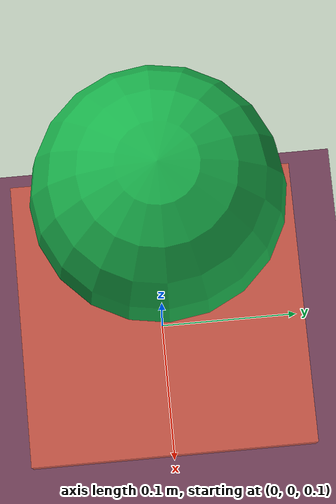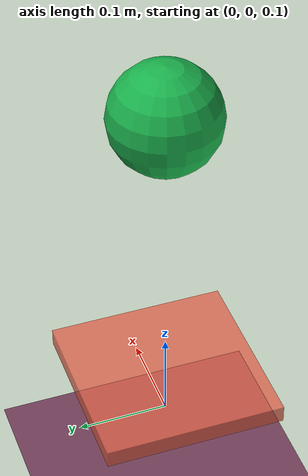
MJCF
<mujoco model="dribble_up">
  <compiler angle="radian" balanceinertia="true"/>

  <option timestep="0.002" gravity="0 0 -9.81" integrator="Euler">
    <flag contact="enable"/>
  </option>

  <default>
    <geom condim="4" friction="0.8 0.005 0.0001"/>
    <joint damping="0.1"/>
  </default>

  <asset>
    <texture name="grid" type="2d" builtin="checker"
             width="512" height="512"
             rgb1="0.4 0.2 0.3" rgb2="0.5 0.3 0.4"/>
    <material name="grid" texture="grid" texrepeat="8 8"/>
    <material name="ball_mat" rgba="0.1 0.7 0.3 1"/>
    <material name="paddle_mat" rgba="0.9 0.4 0.3 0.8"/>
  </asset>

  <worldbody>
    <!-- Ground plane (floor, not the bounce surface here) -->
    <geom name="ground" type="plane" size="5 5 0.1"
          material="grid" condim="4"
          solref="0.004 0.3" solimp="0.95 0.99 0.001"/>

    <!-- Hand / paddle (damper κ): BELOW the ball -->
    <body name="paddle_base" pos="0 0 0.15">
      <joint name="paddle_x" type="slide" axis="1 0 0"
             range="-2 2" damping="5"/>
      <joint name="paddle_y" type="slide" axis="0 1 0"
             range="-2 2" damping="5"/>
      <joint name="paddle_z" type="slide" axis="0 0 1"
             range="-0.1 1.0" damping="5"/>
      <geom name="paddle_geom" type="box" size="0.10 0.10 0.01"
            mass="0.5" material="paddle_mat"
            condim="4" friction="1.0 0.005 0.0001"
            solref="0.003 1" solimp="0.95 0.99 0.001"/>
    </body>

    <!-- Ball: freejoint, non-uniform inertia (starts above paddle) -->
    <body name="ball" pos="0 0 0.5">
      <freejoint name="ball_joint"/>
      <geom name="ball_geom" type="sphere" size="0.06"
            mass="0.3" material="ball_mat"
            solref="0.004 0.3" solimp="0.95 0.99 0.001"
            condim="4" friction="0.6 0.005 0.0001"/>
      <inertial pos="0 0 0" mass="0.3"
                diaginertia="0.001 0.0008 0.0004"/>
    </body>
  </worldbody>

  <actuator>
    <position name="act_x" joint="paddle_x" kp="200"
              ctrlrange="-2 2"/>
    <position name="act_y" joint="paddle_y" kp="200"
              ctrlrange="-2 2"/>
    <position name="act_z" joint="paddle_z" kp="200"
              ctrlrange="-0.1 1.0"/>
  </actuator>

  <!-- NO touch sensor — force eliminated -->
  <sensor>
    <framepos name="ball_pos" objtype="body" objname="ball"/>
    <framequat name="ball_quat" objtype="body" objname="ball"/>
    <framelinvel name="ball_vel" objtype="body" objname="ball"/>
    <frameangvel name="ball_angvel" objtype="body" objname="ball"/>
    <framepos name="paddle_pos" objtype="body" objname="paddle_base"/>
  </sensor>
</mujoco>
